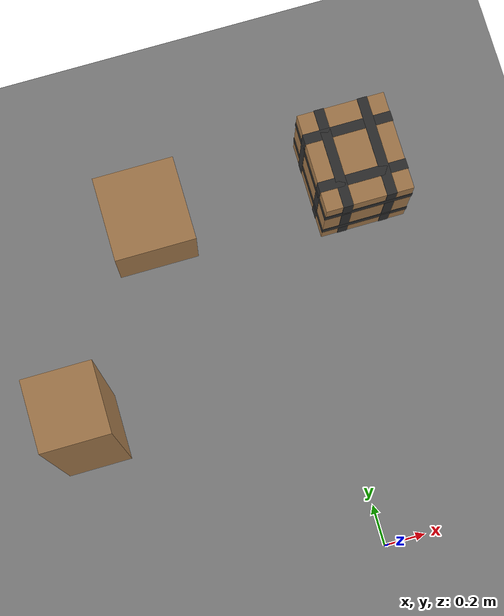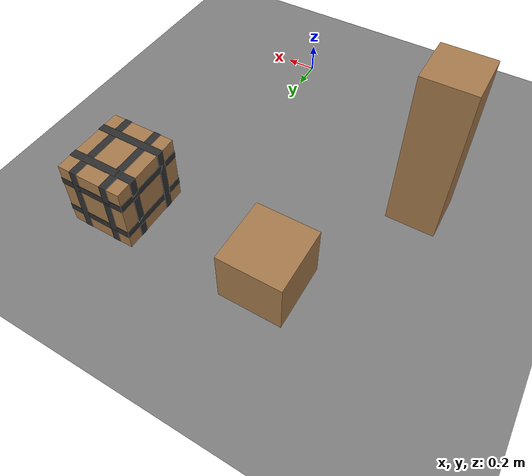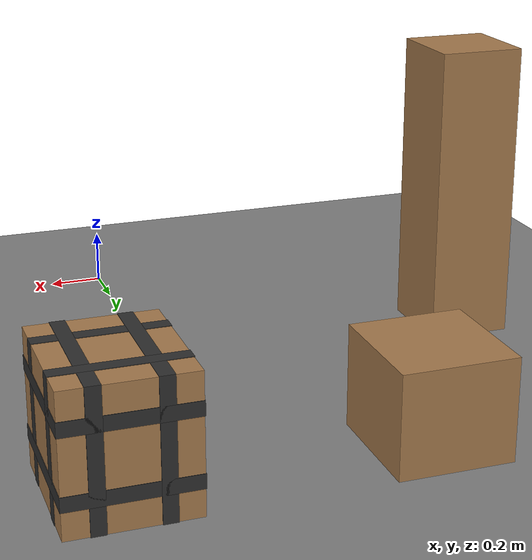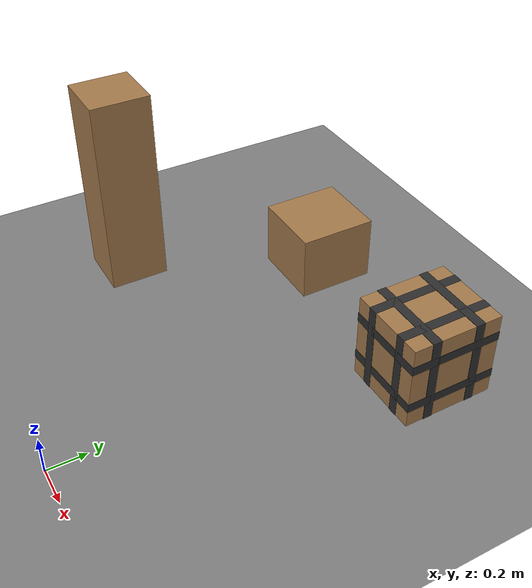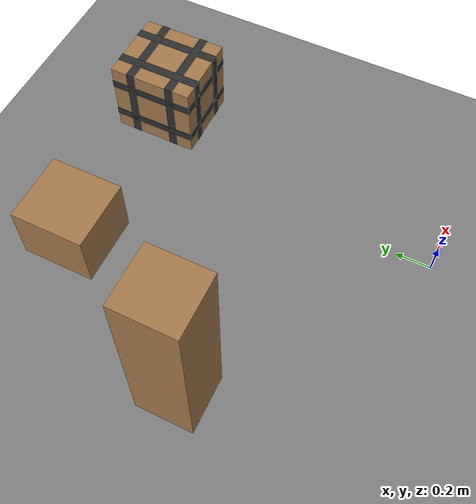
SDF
<sdf version="1.9">
 <world name="ecps295_lowbox_s39_monitor">
  <model name="ground_plane">
   <static>true</static>
   <link name="link">
    <collision name="collision">
     <geometry><plane><normal>0 0 1</normal><size>50 50</size></plane></geometry>
    </collision>
    <visual name="visual">
     <geometry><plane><normal>0 0 1</normal><size>50 50</size></plane></geometry>
     <material><ambient>0.5 0.5 0.5 1</ambient><diffuse>0.5 0.5 0.5 1</diffuse></material>
    </visual>
   </link>
  </model>
  <model name="lb2">
   <static>true</static>
   <pose>-0.67 1.83 0.182 0 0 0</pose>
   <link name="link">
    <collision name="c"><geometry><box><size>0.4 0.42 0.36</size></box></geometry></collision>
    <visual name="v">
     <geometry><box><size>0.4 0.42 0.36</size></box></geometry>
     <material><ambient>0.65 0.48 0.30 1</ambient><diffuse>0.65 0.48 0.30 1</diffuse></material>
    </visual>
   </link>
  </model>
  <model name="lb4">
   <static>true</static>
   <pose>0.36 1.79 0.234 0 0 0</pose>
   <link name="link">
    <collision name="c"><geometry><box><size>0.43 0.49 0.47</size></box></geometry></collision>
    <visual name="v">
     <geometry><box><size>0.43 0.49 0.47</size></box></geometry>
     <material><ambient>0.65 0.48 0.30 1</ambient><diffuse>0.65 0.48 0.30 1</diffuse></material>
    </visual>
    <visual name="tape_ring0">
     <pose>0.000 0.000 -0.117 0 0 0</pose>
     <geometry><box><size>0.434 0.494 0.050</size></box></geometry>
     <material><ambient>0.18 0.18 0.18 1</ambient><diffuse>0.18 0.18 0.18 1</diffuse></material>
    </visual>
    <visual name="tape_bx0">
     <pose>-0.107 0.000 0.000 0 0 0</pose>
     <geometry><box><size>0.050 0.494 0.474</size></box></geometry>
     <material><ambient>0.18 0.18 0.18 1</ambient><diffuse>0.18 0.18 0.18 1</diffuse></material>
    </visual>
    <visual name="tape_by0">
     <pose>0.000 -0.122 0.000 0 0 0</pose>
     <geometry><box><size>0.434 0.050 0.474</size></box></geometry>
     <material><ambient>0.18 0.18 0.18 1</ambient><diffuse>0.18 0.18 0.18 1</diffuse></material>
    </visual>
    <visual name="tape_ring1">
     <pose>0.000 0.000 0.117 0 0 0</pose>
     <geometry><box><size>0.434 0.494 0.050</size></box></geometry>
     <material><ambient>0.18 0.18 0.18 1</ambient><diffuse>0.18 0.18 0.18 1</diffuse></material>
    </visual>
    <visual name="tape_bx1">
     <pose>0.107 0.000 0.000 0 0 0</pose>
     <geometry><box><size>0.050 0.494 0.474</size></box></geometry>
     <material><ambient>0.18 0.18 0.18 1</ambient><diffuse>0.18 0.18 0.18 1</diffuse></material>
    </visual>
    <visual name="tape_by1">
     <pose>0.000 0.122 0.000 0 0 0</pose>
     <geometry><box><size>0.434 0.050 0.474</size></box></geometry>
     <material><ambient>0.18 0.18 0.18 1</ambient><diffuse>0.18 0.18 0.18 1</diffuse></material>
    </visual>
   </link>
  </model>
  <model name="lb5">
   <static>true</static>
   <pose>-1.21 0.9 0.55 0 0 0</pose>
   <link name="link">
    <collision name="c"><geometry><box><size>0.31 0.32 1.1</size></box></geometry></collision>
    <visual name="v">
     <geometry><box><size>0.31 0.32 1.1</size></box></geometry>
     <material><ambient>0.65 0.48 0.30 1</ambient><diffuse>0.65 0.48 0.30 1</diffuse></material>
    </visual>
   </link>
  </model>
 </world>
</sdf>
